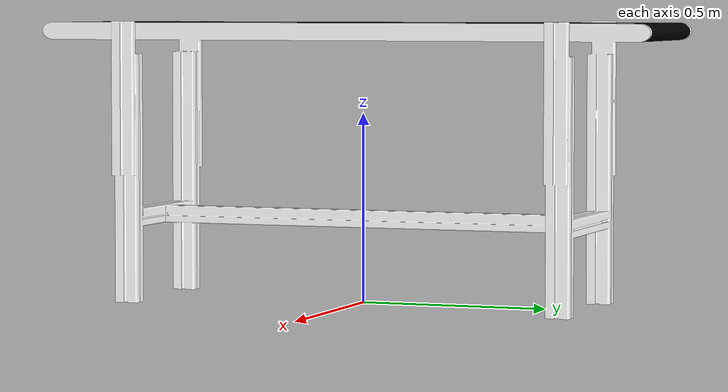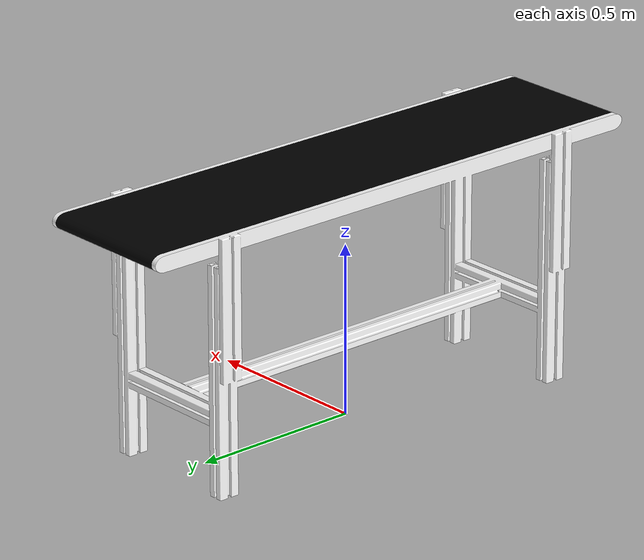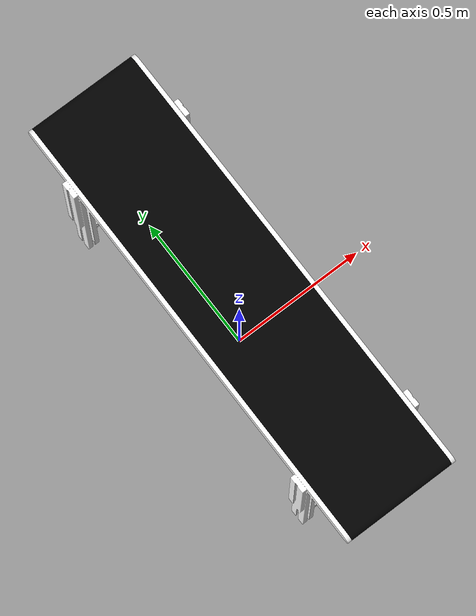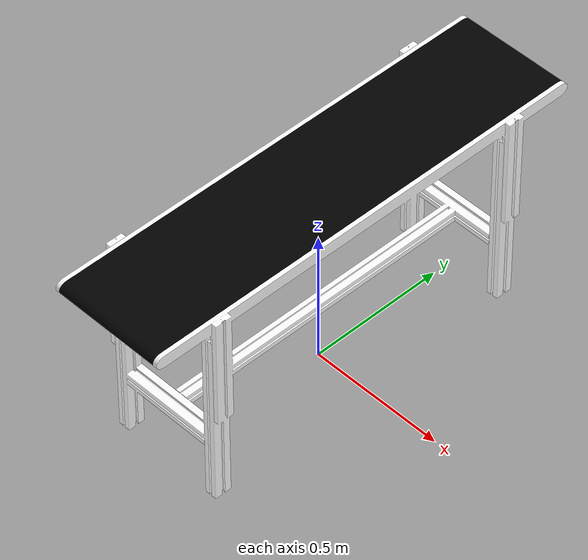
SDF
<?xml version="1.0" ?>
<sdf version="1.8">

  <model name="longer_conveyor_belt">
    <!-- Make the fixed part static -->
    <static>true</static>

    <!-- ==== Link 1: visual & collision of the belt body ==== -->
    <link name="belt_fixed">
      <pose>0 0 0 0 0 0</pose>

      <visual name="belt_visual">
        <pose>0 0 0 0 0 0</pose>
        <cast_shadows>false</cast_shadows>
        <geometry>
          <mesh>
            <uri>model://longer_conveyor_belt/meshes/longer_conveyor_belt.dae</uri>
            <scale>1 1 1</scale>
          </mesh>
        </geometry>
      </visual>

      <collision name="belt_collision">
        <geometry>
          <box>
            <size>0.463 1.66 0.743</size>
          </box>
        </geometry>
        <pose>0 0 0.3715 0 0 0</pose>
      </collision>
    </link>

    <!-- ==== Link 2: Moving belt surface ==== -->

    <!-- ==== Joint ==== -->

  </model>
</sdf>
